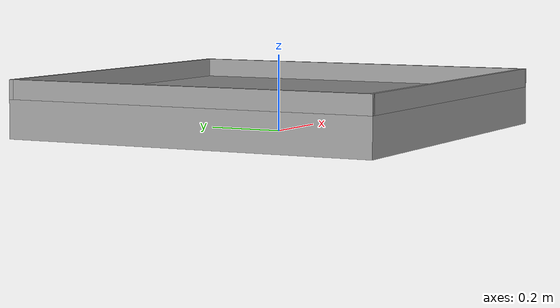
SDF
<?xml version='1.0'?>
<sdf version='1.6'>
  <model name='maze_base'>
    <link name='base'>
      <pose frame=''>0 0 0 0 -0 0</pose>
      <inertial>
        <mass>1</mass>
        <inertia>
          <ixx>0.08416</ixx>
          <ixy>0</ixy>
          <ixz>0</ixz>
          <iyy>0.08416</iyy>
          <iyz>0</iyz>
          <izz>0.166667</izz>
        </inertia>
        <pose frame=''>0 0 0.05 0 -0 0</pose>
      </inertial>
      <self_collide>0</self_collide>
      <kinematic>0</kinematic>
      <visual name='visual'>
        <pose frame=''>0 0 0.05 0 -0 0</pose>
        <geometry>
          <box>
            <size>1 1 0.1</size>
          </box>
        </geometry>
        <material>
          <lighting>1</lighting>
          <script>
            <uri>file://media/materials/scripts/gazebo.material</uri>
            <name>Gazebo/Grey</name>
          </script>
          <ambient>0.3 0.3 0.3 1</ambient>
          <diffuse>0.7 0.7 0.7 1</diffuse>
          <specular>0.01 0.01 0.01 1</specular>
          <emissive>0 0 0 1</emissive>
          <shader type='vertex'>
            <normal_map>__default__</normal_map>
          </shader>
        </material>
        <cast_shadows>1</cast_shadows>
        <transparency>0</transparency>
      </visual>
      <collision name='collision'>
        <laser_retro>0</laser_retro>
        <max_contacts>10</max_contacts>
        <pose frame=''>0 0 0.05 0 -0 0</pose>
        <geometry>
          <box>
            <size>1 1 0.1</size>
          </box>
        </geometry>
        <surface>
          <friction>
            <ode>
              <mu>1</mu>
              <mu2>1</mu2>
              <fdir1>0 0 0</fdir1>
              <slip1>0</slip1>
              <slip2>0</slip2>
            </ode>
            <torsional>
              <coefficient>1</coefficient>
              <patch_radius>0</patch_radius>
              <surface_radius>0</surface_radius>
              <use_patch_radius>1</use_patch_radius>
              <ode>
                <slip>0</slip>
              </ode>
            </torsional>
          </friction>
          <bounce>
            <restitution_coefficient>0</restitution_coefficient>
            <threshold>1e+06</threshold>
          </bounce>
          <contact>
            <collide_without_contact>0</collide_without_contact>
            <collide_without_contact_bitmask>1</collide_without_contact_bitmask>
            <collide_bitmask>1</collide_bitmask>
            <ode>
              <soft_cfm>0</soft_cfm>
              <soft_erp>0.2</soft_erp>
              <kp>1e+13</kp>
              <kd>1</kd>
              <max_vel>0.01</max_vel>
              <min_depth>0</min_depth>
            </ode>
            <bullet>
              <split_impulse>1</split_impulse>
              <split_impulse_penetration_threshold>-0.01</split_impulse_penetration_threshold>
              <soft_cfm>0</soft_cfm>
              <soft_erp>0.2</soft_erp>
              <kp>1e+13</kp>
              <kd>1</kd>
            </bullet>
          </contact>
        </surface>
      </collision>
    </link>
    <link name='east_wall'>
      <pose frame=''>0 0.494 0.1 0 -0 0</pose>
      <inertial>
        <mass>1</mass>
        <inertia>
          <ixx>0.000220</ixx>
          <ixy>0</ixy>
          <ixz>0</ixz>
          <iyy>0.083541</iyy>
          <iyz>0</iyz>
          <izz>0.083345</izz>
        </inertia>
        <pose frame=''>0 0 0.025 0 -0 0</pose>
      </inertial>
      <gravity>1</gravity>
      <self_collide>0</self_collide>
      <kinematic>0</kinematic>
      <visual name='visual'>
        <pose frame=''>0 0 0.025 0 -0 0</pose>
        <geometry>
          <box>
            <size>1 0.012 0.05</size>
          </box>
        </geometry>
        <material>
          <lighting>1</lighting>
          <script>
            <uri>file://media/materials/scripts/gazebo.material</uri>
            <name>Gazebo/Grey</name>
          </script>
          <ambient>0.3 0.3 0.3 1</ambient>
          <diffuse>0.7 0.7 0.7 1</diffuse>
          <specular>0.01 0.01 0.01 1</specular>
          <emissive>0 0 0 1</emissive>
          <shader type='vertex'>
            <normal_map>__default__</normal_map>
          </shader>
        </material>
        <cast_shadows>1</cast_shadows>
        <transparency>0</transparency>
      </visual>
      <collision name='collision'>
        <laser_retro>0</laser_retro>
        <max_contacts>10</max_contacts>
        <pose frame=''>0 0 0.025 0 -0 0</pose>
        <geometry>
          <box>
            <size>1 0.012 0.05</size>
          </box>
        </geometry>
        <surface>
          <friction>
            <ode>
              <mu>1</mu>
              <mu2>1</mu2>
              <fdir1>0 0 0</fdir1>
              <slip1>0</slip1>
              <slip2>0</slip2>
            </ode>
            <torsional>
              <coefficient>1</coefficient>
              <patch_radius>0</patch_radius>
              <surface_radius>0</surface_radius>
              <use_patch_radius>1</use_patch_radius>
              <ode>
                <slip>0</slip>
              </ode>
            </torsional>
          </friction>
          <bounce>
            <restitution_coefficient>0</restitution_coefficient>
            <threshold>1e+06</threshold>
          </bounce>
          <contact>
            <collide_without_contact>0</collide_without_contact>
            <collide_without_contact_bitmask>1</collide_without_contact_bitmask>
            <collide_bitmask>1</collide_bitmask>
            <ode>
              <soft_cfm>0</soft_cfm>
              <soft_erp>0.2</soft_erp>
              <kp>1e+13</kp>
              <kd>1</kd>
              <max_vel>0.01</max_vel>
              <min_depth>0</min_depth>
            </ode>
            <bullet>
              <split_impulse>1</split_impulse>
              <split_impulse_penetration_threshold>-0.01</split_impulse_penetration_threshold>
              <soft_cfm>0</soft_cfm>
              <soft_erp>0.2</soft_erp>
              <kp>1e+13</kp>
              <kd>1</kd>
            </bullet>
          </contact>
        </surface>
      </collision>
    </link>
    <link name='west_wall'>
      <pose frame=''>0 -0.494 0.1 0 -0 0</pose>
      <inertial>
        <mass>1</mass>
        <inertia>
          <ixx>0.000220</ixx>
          <ixy>0</ixy>
          <ixz>0</ixz>
          <iyy>0.083541</iyy>
          <iyz>0</iyz>
          <izz>0.083345</izz>
        </inertia>
        <pose frame=''>0 0 0.025 0 -0 0</pose>
      </inertial>
      <self_collide>0</self_collide>
      <kinematic>0</kinematic>
      <gravity>1</gravity>
      <visual name='visual'>
        <pose frame=''>0 0 0.025 0 -0 0</pose>
        <geometry>
          <box>
            <size>1 0.012 0.05</size>
          </box>
        </geometry>
        <material>
          <lighting>1</lighting>
          <script>
            <uri>file://media/materials/scripts/gazebo.material</uri>
            <name>Gazebo/Grey</name>
          </script>
          <ambient>0.3 0.3 0.3 1</ambient>
          <diffuse>0.7 0.7 0.7 1</diffuse>
          <specular>0.01 0.01 0.01 1</specular>
          <emissive>0 0 0 1</emissive>
          <shader type='vertex'>
            <normal_map>__default__</normal_map>
          </shader>
        </material>
        <cast_shadows>1</cast_shadows>
        <transparency>0</transparency>
      </visual>
      <collision name='collision'>
        <laser_retro>0</laser_retro>
        <max_contacts>10</max_contacts>
        <pose frame=''>0 0 0.025 0 -0 0</pose>
        <geometry>
          <box>
            <size>1 0.012 0.05</size>
          </box>
        </geometry>
        <surface>
          <friction>
            <ode>
              <mu>1</mu>
              <mu2>1</mu2>
              <fdir1>0 0 0</fdir1>
              <slip1>0</slip1>
              <slip2>0</slip2>
            </ode>
            <torsional>
              <coefficient>1</coefficient>
              <patch_radius>0</patch_radius>
              <surface_radius>0</surface_radius>
              <use_patch_radius>1</use_patch_radius>
              <ode>
                <slip>0</slip>
              </ode>
            </torsional>
          </friction>
          <bounce>
            <restitution_coefficient>0</restitution_coefficient>
            <threshold>1e+06</threshold>
          </bounce>
          <contact>
            <collide_without_contact>0</collide_without_contact>
            <collide_without_contact_bitmask>1</collide_without_contact_bitmask>
            <collide_bitmask>1</collide_bitmask>
            <ode>
              <soft_cfm>0</soft_cfm>
              <soft_erp>0.2</soft_erp>
              <kp>1e+13</kp>
              <kd>1</kd>
              <max_vel>0.01</max_vel>
              <min_depth>0</min_depth>
            </ode>
            <bullet>
              <split_impulse>1</split_impulse>
              <split_impulse_penetration_threshold>-0.01</split_impulse_penetration_threshold>
              <soft_cfm>0</soft_cfm>
              <soft_erp>0.2</soft_erp>
              <kp>1e+13</kp>
              <kd>1</kd>
            </bullet>
          </contact>
        </surface>
      </collision>
    </link>
    <link name='south_wall'>
      <pose frame=''>0.494 0 0.1 0 -0 1.5707</pose>
      <inertial>
        <mass>1</mass>
        <inertia>
          <ixx>0.000220</ixx>
          <ixy>0</ixy>
          <ixz>0</ixz>
          <iyy>0.083541</iyy>
          <iyz>0</iyz>
          <izz>0.083345</izz>
        </inertia>
        <pose frame=''>0 0 0.025 0 -0 0</pose>
      </inertial>
      <self_collide>0</self_collide>
      <kinematic>0</kinematic>
      <gravity>1</gravity>
      <visual name='visual'>
        <pose frame=''>0 0 0.025 0 -0 0</pose>
        <geometry>
          <box>
            <size>1 0.012 0.05</size>
          </box>
        </geometry>
        <material>
          <lighting>1</lighting>
          <script>
            <uri>file://media/materials/scripts/gazebo.material</uri>
            <name>Gazebo/Grey</name>
          </script>
          <ambient>0.3 0.3 0.3 1</ambient>
          <diffuse>0.7 0.7 0.7 1</diffuse>
          <specular>0.01 0.01 0.01 1</specular>
          <emissive>0 0 0 1</emissive>
          <shader type='vertex'>
            <normal_map>__default__</normal_map>
          </shader>
        </material>
        <cast_shadows>1</cast_shadows>
        <transparency>0</transparency>
      </visual>
      <collision name='collision'>
        <laser_retro>0</laser_retro>
        <max_contacts>10</max_contacts>
        <pose frame=''>0 0 0.025 0 -0 0</pose>
        <geometry>
          <box>
            <size>1 0.012 0.05</size>
          </box>
        </geometry>
        <surface>
          <friction>
            <ode>
              <mu>1</mu>
              <mu2>1</mu2>
              <fdir1>0 0 0</fdir1>
              <slip1>0</slip1>
              <slip2>0</slip2>
            </ode>
            <torsional>
              <coefficient>1</coefficient>
              <patch_radius>0</patch_radius>
              <surface_radius>0</surface_radius>
              <use_patch_radius>1</use_patch_radius>
              <ode>
                <slip>0</slip>
              </ode>
            </torsional>
          </friction>
          <bounce>
            <restitution_coefficient>0</restitution_coefficient>
            <threshold>1e+06</threshold>
          </bounce>
          <contact>
            <collide_without_contact>0</collide_without_contact>
            <collide_without_contact_bitmask>1</collide_without_contact_bitmask>
            <collide_bitmask>1</collide_bitmask>
            <ode>
              <soft_cfm>0</soft_cfm>
              <soft_erp>0.2</soft_erp>
              <kp>1e+13</kp>
              <kd>1</kd>
              <max_vel>0.01</max_vel>
              <min_depth>0</min_depth>
            </ode>
            <bullet>
              <split_impulse>1</split_impulse>
              <split_impulse_penetration_threshold>-0.01</split_impulse_penetration_threshold>
              <soft_cfm>0</soft_cfm>
              <soft_erp>0.2</soft_erp>
              <kp>1e+13</kp>
              <kd>1</kd>
            </bullet>
          </contact>
        </surface>
      </collision>
    </link>
    <link name='north_wall'>
      <pose frame=''>-0.494 0 0.1 0 -0 1.5707</pose>
      <inertial>
        <mass>1</mass>
        <inertia>
          <ixx>0.000220</ixx>
          <ixy>0</ixy>
          <ixz>0</ixz>
          <iyy>0.083541</iyy>
          <iyz>0</iyz>
          <izz>0.083345</izz>
        </inertia>
        <pose frame=''>0 0 0.025 0 -0 0</pose>
      </inertial>
      <self_collide>0</self_collide>
      <kinematic>0</kinematic>
      <gravity>1</gravity>
      <visual name='visual'>
        <pose frame=''>0 0 0.025 0 -0 0</pose>
        <geometry>
          <box>
            <size>1 0.012 0.05</size>
          </box>
        </geometry>
        <material>
          <lighting>1</lighting>
          <script>
            <uri>file://media/materials/scripts/gazebo.material</uri>
            <name>Gazebo/Grey</name>
          </script>
          <ambient>0.3 0.3 0.3 1</ambient>
          <diffuse>0.7 0.7 0.7 1</diffuse>
          <specular>0.01 0.01 0.01 1</specular>
          <emissive>0 0 0 1</emissive>
          <shader type='vertex'>
            <normal_map>__default__</normal_map>
          </shader>
        </material>
        <cast_shadows>1</cast_shadows>
        <transparency>0</transparency>
      </visual>
      <collision name='collision'>
        <laser_retro>0</laser_retro>
        <max_contacts>10</max_contacts>
        <pose frame=''>0 0 0.025 0 -0 0</pose>
        <geometry>
          <box>
            <size>1 0.012 0.05</size>
          </box>
        </geometry>
        <surface>
          <friction>
            <ode>
              <mu>1</mu>
              <mu2>1</mu2>
              <fdir1>0 0 0</fdir1>
              <slip1>0</slip1>
              <slip2>0</slip2>
            </ode>
            <torsional>
              <coefficient>1</coefficient>
              <patch_radius>0</patch_radius>
              <surface_radius>0</surface_radius>
              <use_patch_radius>1</use_patch_radius>
              <ode>
                <slip>0</slip>
              </ode>
            </torsional>
          </friction>
          <bounce>
            <restitution_coefficient>0</restitution_coefficient>
            <threshold>1e+06</threshold>
          </bounce>
          <contact>
            <collide_without_contact>0</collide_without_contact>
            <collide_without_contact_bitmask>1</collide_without_contact_bitmask>
            <collide_bitmask>1</collide_bitmask>
            <ode>
              <soft_cfm>0</soft_cfm>
              <soft_erp>0.2</soft_erp>
              <kp>1e+13</kp>
              <kd>1</kd>
              <max_vel>0.01</max_vel>
              <min_depth>0</min_depth>
            </ode>
            <bullet>
              <split_impulse>1</split_impulse>
              <split_impulse_penetration_threshold>-0.01</split_impulse_penetration_threshold>
              <soft_cfm>0</soft_cfm>
              <soft_erp>0.2</soft_erp>
              <kp>1e+13</kp>
              <kd>1</kd>
            </bullet>
          </contact>
        </surface>
      </collision>
    </link>
    <joint name='base_west_wall_joint' type='fixed'>
      <parent>base</parent>
      <child>west_wall</child>
      <pose frame=''>0 0 0 0 -0 0</pose>
      <physics>
        <ode>
          <limit>
            <cfm>0</cfm>
            <erp>0.2</erp>
          </limit>
          <suspension>
            <cfm>0</cfm>
            <erp>0.2</erp>
          </suspension>
        </ode>
      </physics>
    </joint>
    <joint name='base_north_wall_joint' type='fixed'>
      <parent>base</parent>
      <child>north_wall</child>
      <pose frame=''>0 0 0 0 -0 0</pose>
      <physics>
        <ode>
          <limit>
            <cfm>0</cfm>
            <erp>0.2</erp>
          </limit>
          <suspension>
            <cfm>0</cfm>
            <erp>0.2</erp>
          </suspension>
        </ode>
      </physics>
    </joint>
    <joint name='base_south_wall_joint' type='fixed'>
      <parent>base</parent>
      <child>south_wall</child>
      <pose frame=''>0 0 0 0 -0 0</pose>
      <physics>
        <ode>
          <limit>
            <cfm>0</cfm>
            <erp>0.2</erp>
          </limit>
          <suspension>
            <cfm>0</cfm>
            <erp>0.2</erp>
          </suspension>
        </ode>
      </physics>
    </joint>
    <joint name='base_east_wall_joint' type='fixed'>
      <parent>base</parent>
      <child>east_wall</child>
      <pose frame=''>0 0 0 0 -0 0</pose>
      <physics>
        <ode>
          <limit>
            <cfm>0</cfm>
            <erp>0.2</erp>
          </limit>
          <suspension>
            <cfm>0</cfm>
            <erp>0.2</erp>
          </suspension>
        </ode>
      </physics>
    </joint>
    <static>0</static>
    <allow_auto_disable>1</allow_auto_disable>
    <plugin name="maze_plugin" filename="libmaze_plugin.so">
      <maze_file>/home/peter/Projects/2016_Solvers/mazes/16x16.mz</maze_file>
    </plugin>
  </model>
</sdf>
